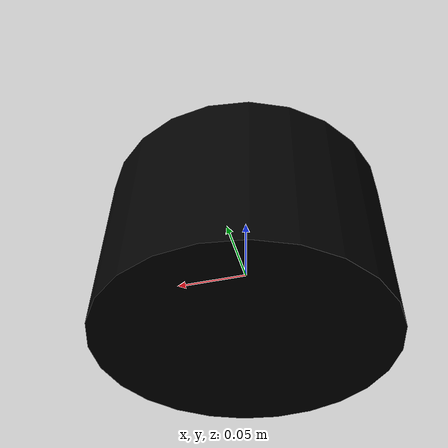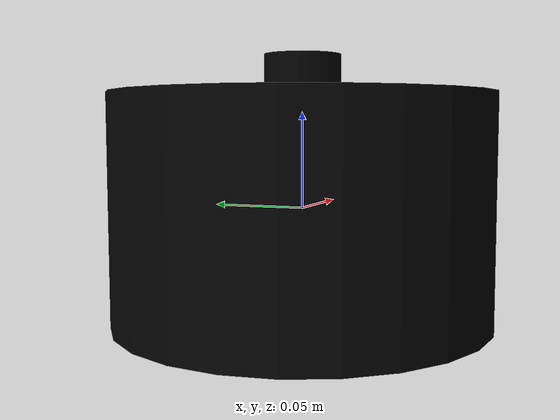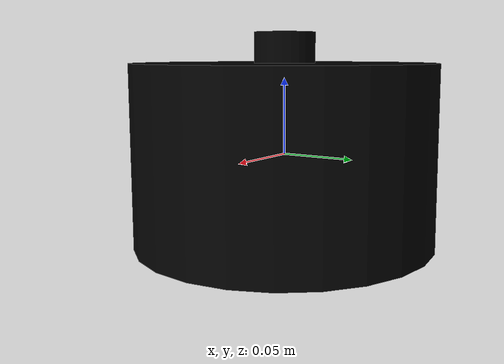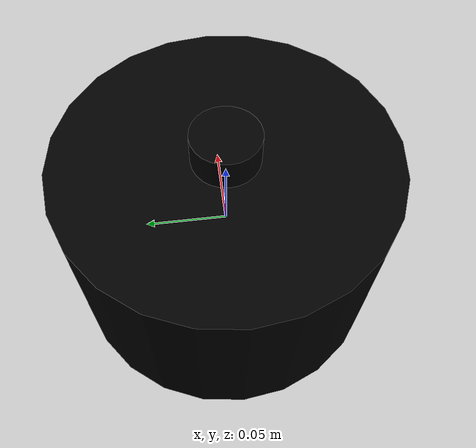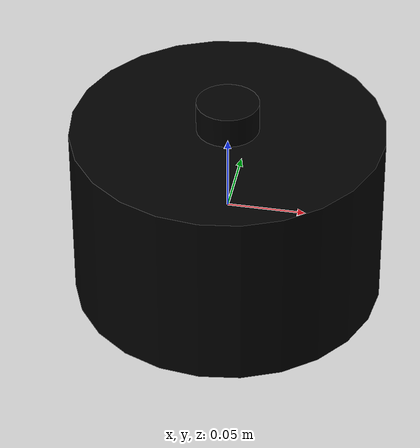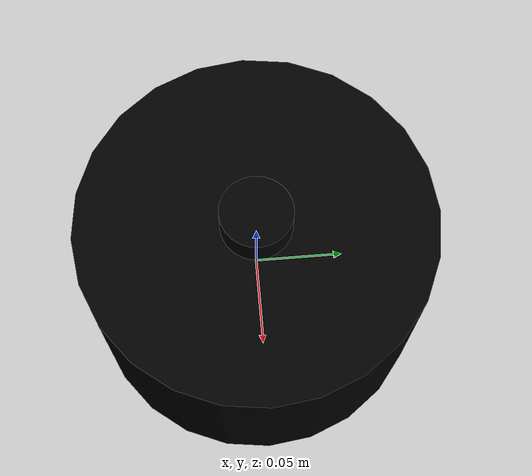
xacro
<?xml version="1.0"?>
<robot xmlns:xacro="http://www.ros.org/wiki/xacro" name="bot_base">

<xacro:property name="base_radius" value="0.10" />
<xacro:property name="base_length" value="0.12" />
<xacro:property name="laser_radius" value="0.02" />
<xacro:property name="laser_length" value="0.02" />

<material name="black">
    <color rgba="0 0 0 1"/>
</material>

<link name="base_link">
    <visual>
        <geometry>
            <cylinder radius="${base_radius}" length="${base_length}"/>
        </geometry>
        <material name="black"/>
    </visual>
    <collision>
        <geometry>
            <cylinder radius="${base_radius}" length="${base_length}"/>
        </geometry>
    </collision>

</link>

<link name="laser_link">
    <visual>
        <geometry>
            <cylinder radius="${laser_radius}" length="${laser_length}"/>
        </geometry>
        <material name="black"/>
    </visual>
    <collision>
        <geometry>
            <cylinder radius="${laser_radius}" length="${laser_length}"/>
        </geometry>
    </collision>
</link>

<joint name="laser_joint" type="fixed">
    <parent link="base_link"/>
    <child link="laser_link"/>
    <origin xyz="0 0 ${base_length/2 + laser_length/2}" rpy="0 0 0"/>
</joint>

</robot>
